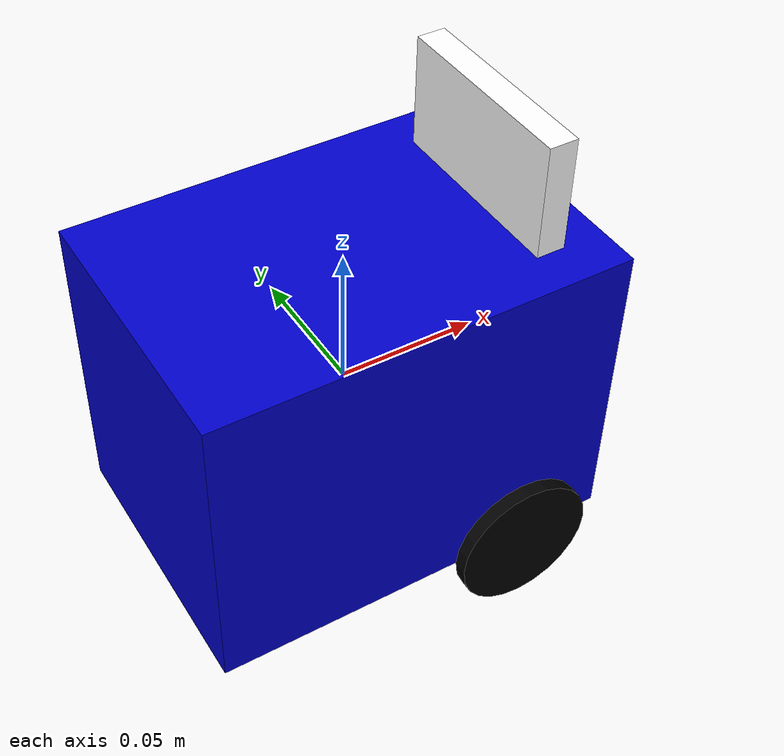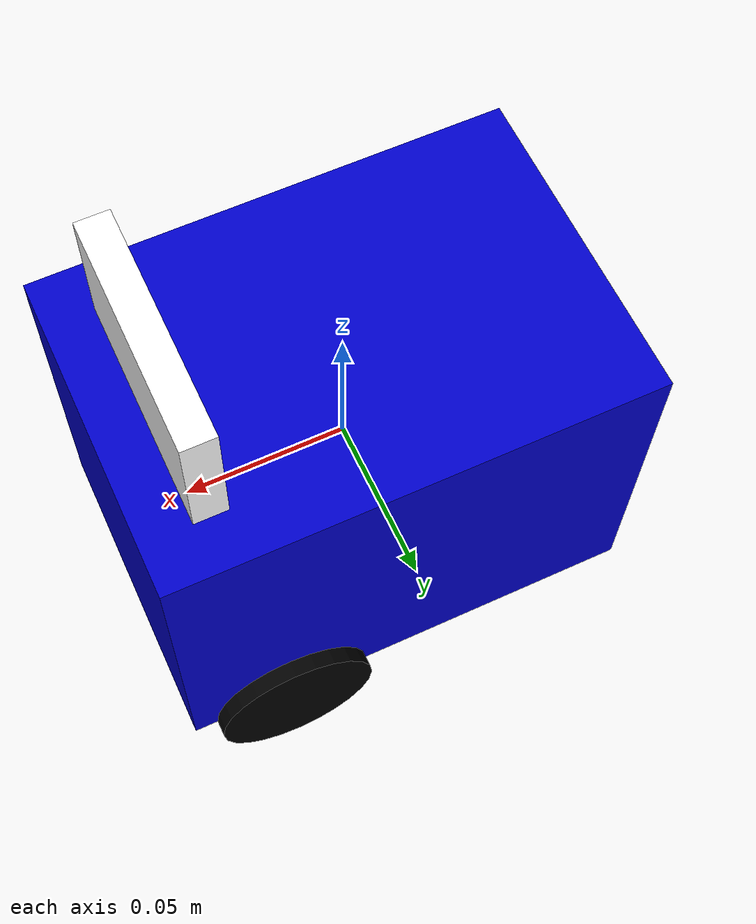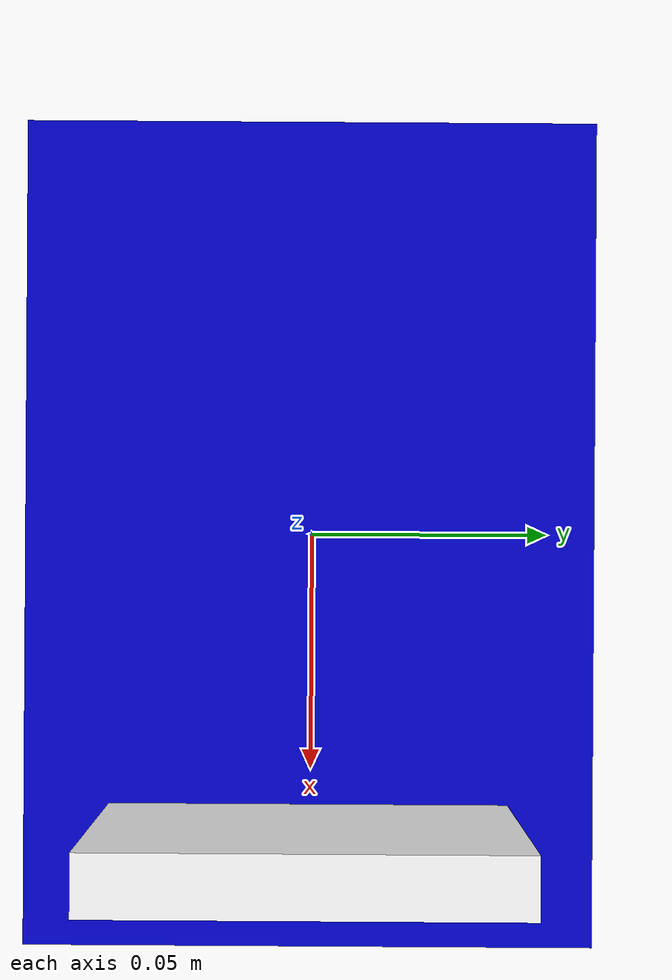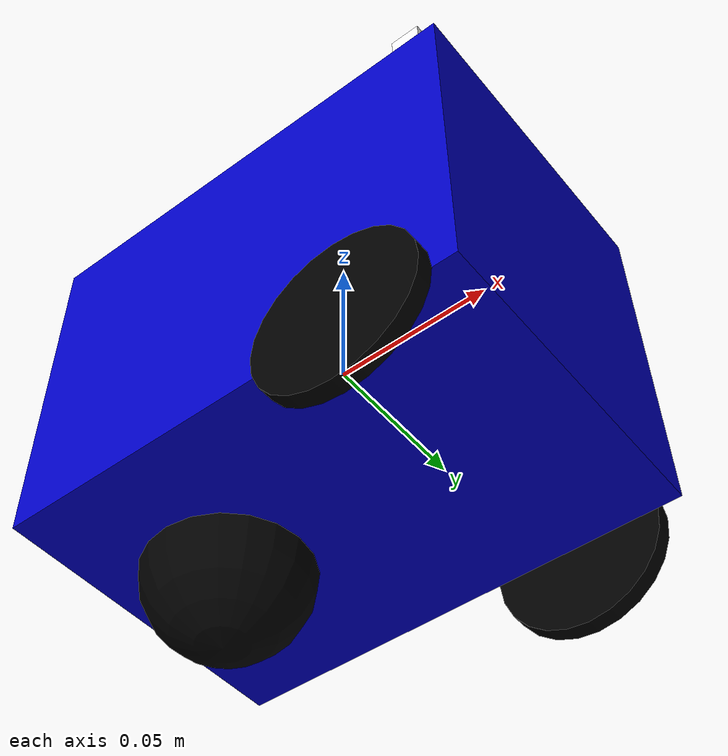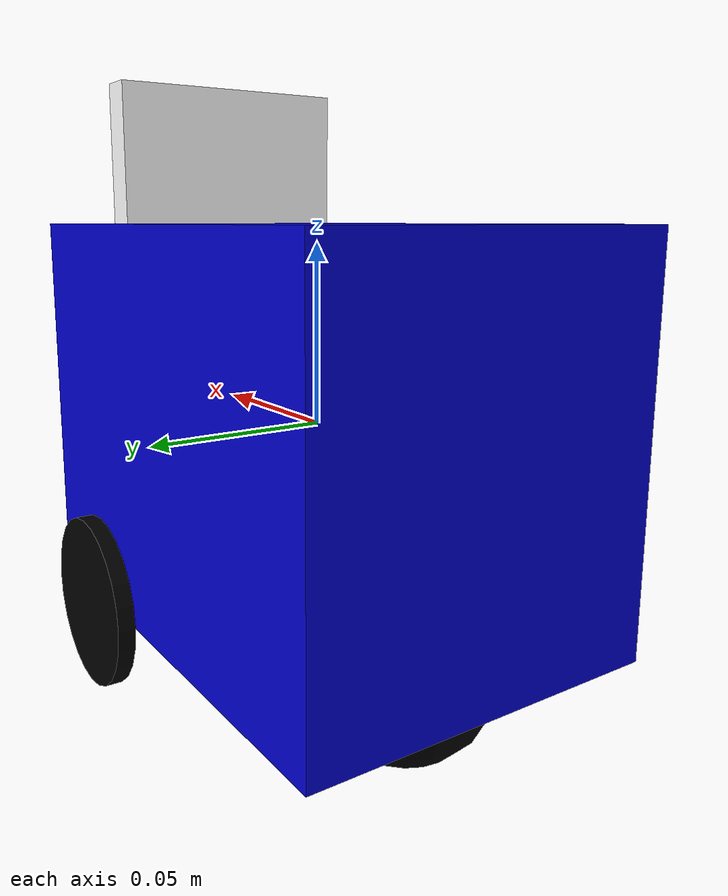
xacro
<?xml version="1.0"?>
<robot name="rosbot" xmlns:xacro="http://ros.org/wiki/xacro">

  <xacro:property name="base_mass" value="10.0" />
  <xacro:property name="base_length" value="0.145" />
  <xacro:property name="base_width"  value="0.1" />
  <xacro:property name="base_height" value="0.11" />

  <xacro:property name="wheel_mass" value="3.0" />
  <xacro:property name="wheel_radius" value="0.025" />
  <xacro:property name="wheel_width" value="0.005" />

  <material name="blue">
    <color rgba="0 0 0.8 1"/>
  </material>

  <material name="black">
    <color rgba="0 0 0 1"/>
  </material>

  <material name="white">
    <color rgba="1 1 1 1"/>
  </material>

  <xacro:macro name="cylinder_inertia" params="m r h">
    <inertial>
      <mass value="${m}" />
      <inertia  ixx="${m*(3*r*r+h*h)/12}" ixy = "0" ixz = "0"
                  iyy="${m*(3*r*r+h*h)/12}" iyz = "0"
                  izz="${m*r*r/2}" />
   </inertial>
  </xacro:macro>

  <xacro:macro name="box_inertia" params="m x y z">
    <inertial>
      <mass value="${m}" />
      <inertia  ixx="${m*(y*y+z*z)/12}" ixy = "0" ixz = "0"
                  iyy="${m*(x*x+z*z)/12}" iyz = "0"
                  izz="${m*(x*x+z*z)/12}" />
    </inertial>
  </xacro:macro>

  <xacro:macro name="sphere_inertia" params="m r">
    <inertial>
      <mass value="${m}" />
      <inertia  ixx="${2*m*r*r/5}" ixy = "0" ixz = "0"
                  iyy="${2*m*r*r/5}" iyz = "0"
                  izz="${2*m*r*r/5}" />
    </inertial>
  </xacro:macro>

  <link name="base_link">
    <visual>
      <geometry>
         <box size="${base_length} ${base_width} ${base_height}"/>
      </geometry>
      <material name="blue"/>
    </visual>
    <collision>
      <geometry>
        <box size="${base_length} ${base_width} ${base_height}"/>
      </geometry>
      <surface>
        <friction>
          <ode>
            <mu>0</mu>
            <mu2>0</mu2>
            <slip1>1.0</slip1>
            <slip2>1.0</slip2>
          </ode>
        </friction>
      </surface>
    </collision>
    <xacro:box_inertia m="${base_mass}" x="${base_length}" y="${base_width}" z="${base_height}"/>
  </link>

  <xacro:include filename="$(find bot_description)/urdf/camera.urdf.xacro" />
  <xacro:include filename="$(find bot_description)/urdf/wheel.urdf.xacro" />

  <xacro:wheel prefix="left" reflect="1"/>
  <xacro:wheel prefix="right" reflect="-1"/>

  <link name="rear_wheel">
    <visual>
      <geometry>
        <sphere radius="${wheel_radius}"/>
      </geometry>
      <material name="black"/>
    </visual>
    <collision>
      <geometry>
        <sphere radius="${wheel_radius}"/>
      </geometry>
    </collision>
    <xacro:sphere_inertia m="${wheel_mass}" r="${wheel_mass}"/>
  </link>

  <joint name="rear_wheel_joint" type="fixed">
    <parent link="base_link"/>
    <child link="rear_wheel"/>
    <axis xyz="0 0 1"/>
    <origin xyz="${-base_length/3.6} 0 -${base_height/2}"/>
  </joint>

  <gazebo reference="rear_wheel">
    <turnGravityOff>false</turnGravityOff>
  </gazebo>

  <gazebo>
    <plugin name="gazebo_ros_control" filename="libgazebo_ros_control.so">
      <robotNamespace>/rosbot</robotNamespace>
    </plugin>
  </gazebo>
</robot>

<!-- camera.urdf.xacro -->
<robot xmlns:xacro="http://www.ros.org/wiki/xacro">
<xacro:property name="M_PI" value="3.141592" />
<link name="top_camera">
  <xacro:box_inertia m="0.01" x="0.01" y="0.07" z="0.04"/>
  <visual>
    <geometry>
      <box size="0.01 0.07 0.04" />
    </geometry>
    <material name="white"/>
  </visual>
  <collision>
    <origin xyz="0 0 0" rpy="0 0 0"/>
    <geometry>
      <box size="0.01 0.07 0.04" />
    </geometry>
  </collision>
</link>

<joint name="top_camera_joint" type="fixed">
  <origin xyz="${base_length/2 - 0.02} 0.0 ${base_height/2 + 0.02}" rpy="0 0 0" />
  <parent link="base_link" />
  <child link="top_camera"/>
</joint>

<gazebo reference="top_camera">
 <sensor type="camera" name="main_camera">
   <update_rate>30.0</update_rate>
   <camera name="head">
     <horizontal_fov>1.57</horizontal_fov>
     <image>
       <width>640</width>
       <height>480</height>
       <format>R8G8B8</format>
     </image>
     <clip>
       <near>0.02</near>
       <far>300</far>
     </clip>
     <noise>
       <type>gaussian</type>
       <mean>0.0</mean>
       <stddev>0.007</stddev>
     </noise>
   </camera>
   <plugin name="camera_controller" filename="libgazebo_ros_camera.so">
     <alwaysOn>true</alwaysOn>
     <updateRate>0.0</updateRate>
     <cameraName>rosbot/main_camera</cameraName>
     <imageTopicName>image_raw</imageTopicName>
     <cameraInfoTopicName>camera_info</cameraInfoTopicName>
     <frameName>camera_link_optical</frameName>
     <hackBaseline>0.07</hackBaseline>
     <distortionK1>0.0</distortionK1>
     <distortionK2>0.0</distortionK2>
     <distortionK3>0.0</distortionK3>
     <distortionT1>0.0</distortionT1>
     <distortionT2>0.0</distortionT2>
   </plugin>
 </sensor>
</gazebo>

<link name="camera_optical_frame">
  <inertial>
    <mass value="0.01" />
    <origin xyz="0 0 0" />
    <inertia ixx="0.001"  ixy="0.0"  ixz="0.0"
             iyy="0.001"  iyz="0.0"
             izz="0.001" />
  </inertial>
  <visual>
    <origin xyz="0 0 0" rpy="0 0 0"/>
    <geometry>
      <box size="0.001 0.001 0.001" />
    </geometry>
  </visual>
  <collision>
    <origin xyz="0 0 0" rpy="0 0 0"/>
    <geometry>
      <box size="0.001 0.001 0.001" />
    </geometry>
  </collision>
</link>

<joint name="camera_optical_joint" type="fixed">
  <origin xyz="0 0 0" rpy="${-M_PI/2} 0.0 ${-M_PI/2}" />
  <parent link="top_camera" />
  <child link="camera_optical_frame"/>
</joint>

</robot>

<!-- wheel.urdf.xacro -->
<robot xmlns:xacro="http://www.ros.org/wiki/xacro">
<xacro:macro name="wheel" params="prefix reflect">
  <link name="${prefix}_wheel">
    <visual>
      <origin xyz="0 0 0" rpy="${pi/2} 0 0" />
      <geometry>
        <cylinder radius="${wheel_radius}" length="${wheel_width}"/>
      </geometry>
      <material name="black"/>
    </visual>
    <collision>
      <origin xyz="0 0 0" rpy="${pi/2} 0 0" />
      <geometry>
        <cylinder radius="${wheel_radius}" length="${wheel_width}"/>
      </geometry>
    </collision>
    <xacro:cylinder_inertia m="${wheel_mass}" r="${wheel_radius}" h="${wheel_width}"/>
  </link>

  <joint name="${prefix}_wheel_joint" type="continuous">
    <axis xyz="0 1 0" rpy="0 0 0" />
    <parent link="base_link"/>
    <child link="${prefix}_wheel"/>
    <origin xyz="${base_length/3.6} ${base_width/2*reflect + wheel_width/2*reflect} -${base_height/2}" rpy="0 0 0"/>
    <limit effort="10000" velocity="10"/>
    <joint_properties damping="0.0" friction="0.0"/>
  </joint>

  <gazebo reference="${prefix}_wheel">
    <mu1 value="200.0"/>
    <mu2 value="100.0"/>
    <kp value="10000000.0" />
    <kd value="1.0" />
    <material>Gazebo/Black</material>
  </gazebo>

  <transmission name="${prefix}_wheel_trans">
    <type>transmission_interface/SimpleTransmission</type>
    <actuator name="${prefix}_wheel_motor">
      <mechanicalReduction>1</mechanicalReduction>
    </actuator>
    <joint name="${prefix}_wheel_joint">
      <hardwareInterface>hardware_interface/VelocityJointInterface</hardwareInterface>
    </joint>
  </transmission>
</xacro:macro>
</robot>
